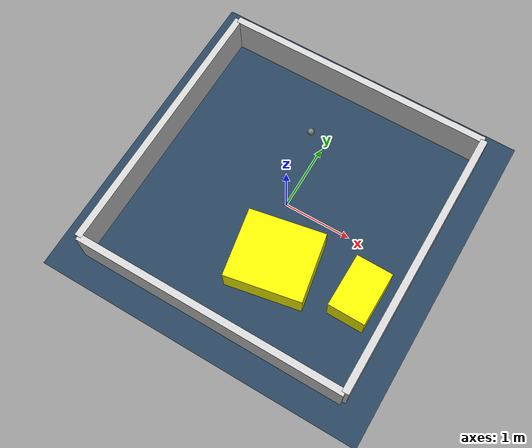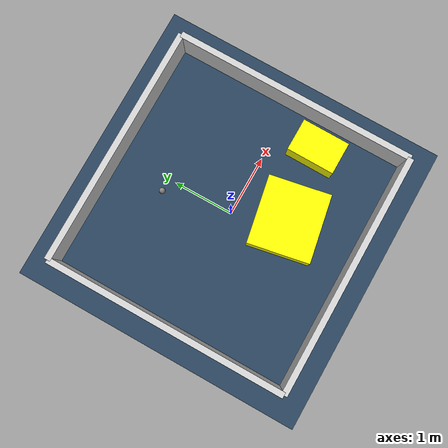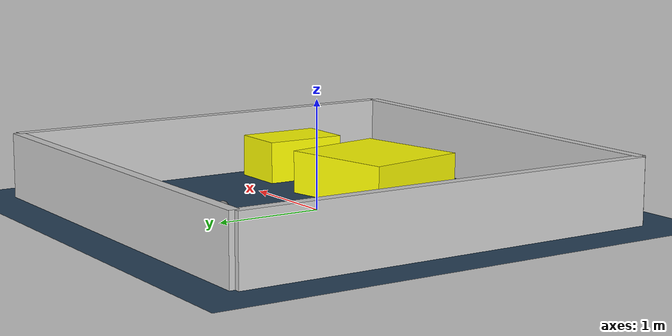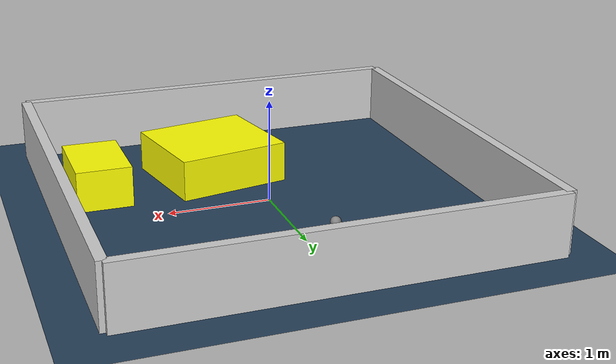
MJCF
<?xml version="1.0" ?>
<mujoco model="generated_environment">
  <option timestep="0.01" integrator="RK4" cone="elliptic"/>
  <default>
    <geom density="1"/>
  </default>
  <asset>
    <texture builtin="gradient" height="3072" rgb1="0.3 0.5 0.7" rgb2="0 0 0" type="skybox" width="512"/>
    <texture builtin="checker" height="300" mark="edge" markrgb="0.8 0.8 0.8" name="groundplane" rgb1="0.2 0.3 0.4" rgb2="0.1 0.2 0.3" type="2d" width="300"/>
    <material name="groundplane" reflectance="0.2" texrepeat="5 5" texture="groundplane" texuniform="true"/>
    <material name="robot" rgba="0.0 1.0 0.0 1"/>
  </asset>
  <worldbody>
    <light dir="0 0 -1" directional="true" pos="0 0 1.5"/>
    <geom condim="4" friction="1.0 0.005 0.001" material="groundplane" name="floor" size="0 0 0.05" type="plane"/>
    <body name="walls">
      <geom name="wall_1" condim="4" pos="-2.0 0.0 0.3" rgba="0.800000011920929 0.800000011920929 0.800000011920929 1.0" size="0.05 2.0 0.3" type="box"/>
      <geom name="wall_2" condim="4" pos="2.0 0.0 0.3" rgba="0.800000011920929 0.800000011920929 0.800000011920929 1.0" size="0.05 2.0 0.3" type="box"/>
      <geom name="wall_3" condim="4" pos="0.0 -2.0 0.3" rgba="0.800000011920929 0.800000011920929 0.800000011920929 1.0" size="2.0 0.05 0.3" type="box"/>
      <geom name="wall_4" condim="4" pos="0.0 2.0 0.3" rgba="0.800000011920929 0.800000011920929 0.800000011920929 1.0" size="2.0 0.05 0.3" type="box"/>
    </body>
    <body name="robot">
      <joint name="joint_x" type="slide" pos="0 0 0" axis="1 0 0"/>
      <joint name="joint_y" type="slide" pos="0 0 0" axis="0 1 0"/>
      <geom name="robot" type="sphere" pos="-0.233359408527974 1.0974438344589839 0.2" size="0.05" mass="5." friction="1.0 0.005 0.0001" condim="4"/>
      <site name="sensor_ball"/>
    </body>
    <body name="obstacle_1_movable">
      <geom name="obstacle_1_movable" condim="4" pos="1.5273185445918394 -0.6900277614882794 0.2" euler="0 0 179.65810463978926" friction="1.0 0.005 0.001" rgba="1 1 0 1" size="0.26875693778693266 0.39576196027458893 0.2" type="box" mass="0.1"/>
      <joint type="free"/>
    </body>
    <body name="obstacle_2_movable">
      <geom name="obstacle_2_movable" condim="4" pos="0.32023362427613344 -0.8417191309542148 0.2" euler="0 0 190.70622655723938" friction="1.0 0.005 0.001" rgba="1 1 0 1" size="0.5582733070024737 0.506855464964729 0.2" type="box" mass="0.1"/>
      <joint type="free"/>
    </body>
  </worldbody>
  <actuator>
    <motor name="actuator_x" joint="joint_x" gear="1" ctrlrange="-1 1"/>
    <motor name="actuator_y" joint="joint_y" gear="1" ctrlrange="-1 1"/>
  </actuator>
</mujoco>
